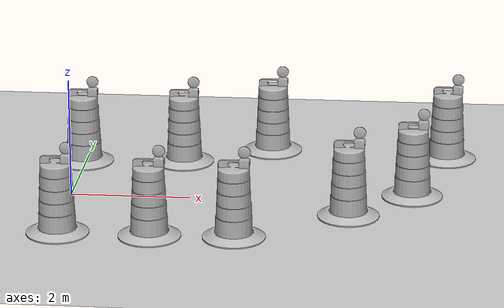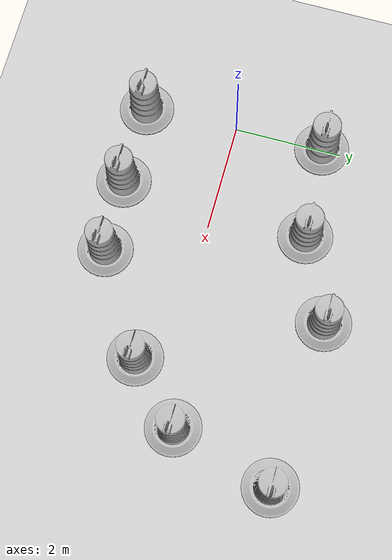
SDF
<sdf version="1.7">
 <world name="default">
  <light name="sun" type="directional">
   <pose>0 0 10 0 -0 0</pose>
   <diffuse>0.8 0.8 0.8 1</diffuse>
   <specular>0.2 0.2 0.2 1</specular>
   <attenuation>
    <range>1000</range>
    <constant>0.9</constant>
    <linear>0.01</linear>
    <quadratic>0.001</quadratic>
   </attenuation>
   <direction>-0.5 0.1 -0.9</direction>
   <spot><inner_angle>0</inner_angle><outer_angle>0</outer_angle><falloff>0</falloff></spot>
  </light>
  <model name="ground_plane">
   <static>1</static>
   <link name="link">
    <collision name="collision">
     <geometry><plane><normal>0 0 1</normal><size>100 100</size></plane></geometry>
     <surface><friction><ode><mu>100</mu><mu2>50</mu2></ode></friction></surface>
    </collision>
    <visual name="visual">
     <cast_shadows>0</cast_shadows>
     <geometry><plane><normal>0 0 1</normal><size>100 100</size></plane></geometry>
     <material>
      <script><uri>file://media/materials/scripts/gazebo.material</uri><name>Gazebo/Grey</name></script>
     </material>
    </visual>
   </link>
  </model>
  <gravity>0 0 -9.8</gravity>
  <magnetic_field>6e-06 2.3e-05 -4.2e-05</magnetic_field>
  <atmosphere type="adiabatic"/>
  <physics type="ode">
   <max_step_size>0.001</max_step_size>
   <real_time_factor>1</real_time_factor>
   <real_time_update_rate>1000</real_time_update_rate>
  </physics>
  <scene><ambient>0.4 0.4 0.4 1</ambient><background>0.7 0.7 0.7 1</background><shadows>1</shadows></scene>
  <audio><device>default</device></audio>
  <spherical_coordinates>
   <surface_model>EARTH_WGS84</surface_model>
   <latitude_deg>0</latitude_deg>
   <longitude_deg>0</longitude_deg>
   <elevation>0</elevation>
   <heading_deg>0</heading_deg>
  </spherical_coordinates>
  <model name="Construction Barrel">
   <link name="link">
    <inertial>
     <pose>0 0 0.4 0 -0 0</pose>
     <mass>500</mass>
     <inertia><ixx>51.2096</ixx><iyy>51.2096</iyy><izz>25</izz><ixy>0</ixy><ixz>0</ixz><iyz>0</iyz></inertia>
    </inertial>
    <collision name="collision">
     <geometry><mesh><uri>model://construction_barrel/meshes/construction_barrel.dae</uri></mesh></geometry>
    </collision>
    <visual name="visual">
     <geometry><mesh><uri>model://construction_barrel/meshes/construction_barrel.dae</uri></mesh></geometry>
    </visual>
   </link>
   <pose>4.67415 -0.602135 -0 0 0 -3.5e-05</pose>
  </model>
  <model name="Construction Barrel_0">
   <link name="link">
    <inertial>
     <pose>0 0 0.4 0 -0 0</pose>
     <mass>500</mass>
     <inertia><ixx>51.2096</ixx><iyy>51.2096</iyy><izz>25</izz><ixy>0</ixy><ixz>0</ixz><iyz>0</iyz></inertia>
    </inertial>
    <collision name="collision">
     <geometry><mesh><uri>model://construction_barrel/meshes/construction_barrel.dae</uri></mesh></geometry>
    </collision>
    <visual name="visual">
     <geometry><mesh><uri>model://construction_barrel/meshes/construction_barrel.dae</uri></mesh></geometry>
    </visual>
   </link>
   <pose>5.69136 0.38563 -3e-06 -6e-06 -5e-06 -3.1e-05</pose>
  </model>
  <model name="Construction Barrel_1">
   <link name="link">
    <inertial>
     <pose>0 0 0.4 0 -0 0</pose>
     <mass>500</mass>
     <inertia><ixx>51.2096</ixx><iyy>51.2096</iyy><izz>25</izz><ixy>0</ixy><ixz>0</ixz><iyz>0</iyz></inertia>
    </inertial>
    <collision name="collision">
     <geometry><mesh><uri>model://construction_barrel/meshes/construction_barrel.dae</uri></mesh></geometry>
    </collision>
    <visual name="visual">
     <geometry><mesh><uri>model://construction_barrel/meshes/construction_barrel.dae</uri></mesh></geometry>
    </visual>
   </link>
   <pose>0.051514 -1.729 -1e-06 4e-06 -2e-06 -2e-05</pose>
  </model>
  <model name="Construction Barrel_2">
   <link name="link">
    <inertial>
     <pose>0 0 0.4 0 -0 0</pose>
     <mass>500</mass>
     <inertia><ixx>51.2096</ixx><iyy>51.2096</iyy><izz>25</izz><ixy>0</ixy><ixz>0</ixz><iyz>0</iyz></inertia>
    </inertial>
    <collision name="collision">
     <geometry><mesh><uri>model://construction_barrel/meshes/construction_barrel.dae</uri></mesh></geometry>
    </collision>
    <visual name="visual">
     <geometry><mesh><uri>model://construction_barrel/meshes/construction_barrel.dae</uri></mesh></geometry>
    </visual>
   </link>
   <pose>2.89764 -1.68958 -2e-06 -4e-06 7e-06 -1.9e-05</pose>
  </model>
  <model name="Construction Barrel_3">
   <link name="link">
    <inertial>
     <pose>0 0 0.4 0 -0 0</pose>
     <mass>500</mass>
     <inertia><ixx>51.2096</ixx><iyy>51.2096</iyy><izz>25</izz><ixy>0</ixy><ixz>0</ixz><iyz>0</iyz></inertia>
    </inertial>
    <collision name="collision">
     <geometry><mesh><uri>model://construction_barrel/meshes/construction_barrel.dae</uri></mesh></geometry>
    </collision>
    <visual name="visual">
     <geometry><mesh><uri>model://construction_barrel/meshes/construction_barrel.dae</uri></mesh></geometry>
    </visual>
   </link>
   <pose>1.54151 -1.741 -0 0 0 -1e-05</pose>
  </model>
  <model name="Construction Barrel_4">
   <link name="link">
    <inertial>
     <pose>0 0 0.4 0 -0 0</pose>
     <mass>500</mass>
     <inertia><ixx>51.2096</ixx><iyy>51.2096</iyy><izz>25</izz><ixy>0</ixy><ixz>0</ixz><iyz>0</iyz></inertia>
    </inertial>
    <collision name="collision">
     <geometry><mesh><uri>model://construction_barrel/meshes/construction_barrel.dae</uri></mesh></geometry>
    </collision>
    <visual name="visual">
     <geometry><mesh><uri>model://construction_barrel/meshes/construction_barrel.dae</uri></mesh></geometry>
    </visual>
   </link>
   <pose>-0.032867 1.64118 -2e-06 7e-06 -4e-06 -9e-06</pose>
  </model>
  <model name="Construction Barrel_5">
   <link name="link">
    <inertial>
     <pose>0 0 0.4 0 -0 0</pose>
     <mass>500</mass>
     <inertia><ixx>51.2096</ixx><iyy>51.2096</iyy><izz>25</izz><ixy>0</ixy><ixz>0</ixz><iyz>0</iyz></inertia>
    </inertial>
    <collision name="collision">
     <geometry><mesh><uri>model://construction_barrel/meshes/construction_barrel.dae</uri></mesh></geometry>
    </collision>
    <visual name="visual">
     <geometry><mesh><uri>model://construction_barrel/meshes/construction_barrel.dae</uri></mesh></geometry>
    </visual>
   </link>
   <pose>1.70395 1.76101 2e-06 2e-06 4e-06 -8e-06</pose>
  </model>
  <model name="Construction Barrel_6">
   <link name="link">
    <inertial>
     <pose>0 0 0.4 0 -0 0</pose>
     <mass>500</mass>
     <inertia><ixx>51.2096</ixx><iyy>51.2096</iyy><izz>25</izz><ixy>0</ixy><ixz>0</ixz><iyz>0</iyz></inertia>
    </inertial>
    <collision name="collision">
     <geometry><mesh><uri>model://construction_barrel/meshes/construction_barrel.dae</uri></mesh></geometry>
    </collision>
    <visual name="visual">
     <geometry><mesh><uri>model://construction_barrel/meshes/construction_barrel.dae</uri></mesh></geometry>
    </visual>
   </link>
   <pose>3.19118 2.4714 -2e-06 8e-06 -4e-06 -7e-06</pose>
  </model>
  <model name="Construction Barrel_7">
   <link name="link">
    <inertial>
     <pose>0 0 0.4 0 -0 0</pose>
     <mass>500</mass>
     <inertia><ixx>51.2096</ixx><iyy>51.2096</iyy><izz>25</izz><ixy>0</ixy><ixz>0</ixz><iyz>0</iyz></inertia>
    </inertial>
    <collision name="collision">
     <geometry><mesh><uri>model://construction_barrel/meshes/construction_barrel.dae</uri></mesh></geometry>
    </collision>
    <visual name="visual">
     <geometry><mesh><uri>model://construction_barrel/meshes/construction_barrel.dae</uri></mesh></geometry>
    </visual>
   </link>
   <pose>6.24111 2.28129 0 0 0 -4e-06</pose>
  </model>
 </world>
</sdf>
